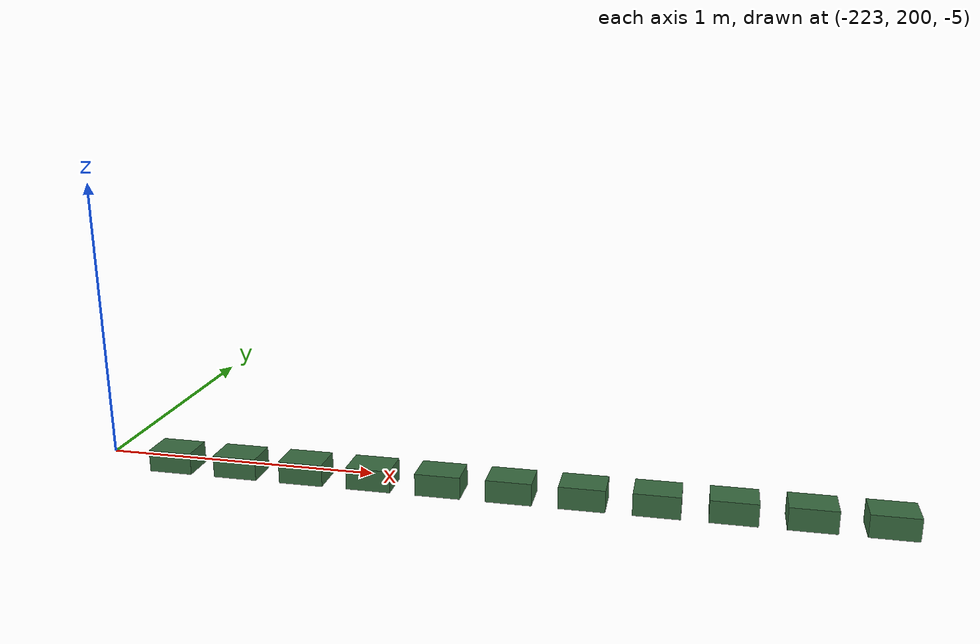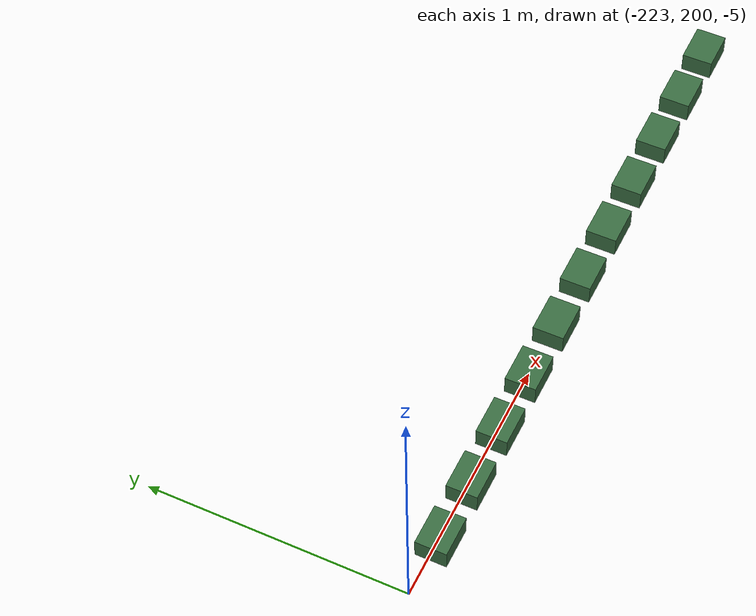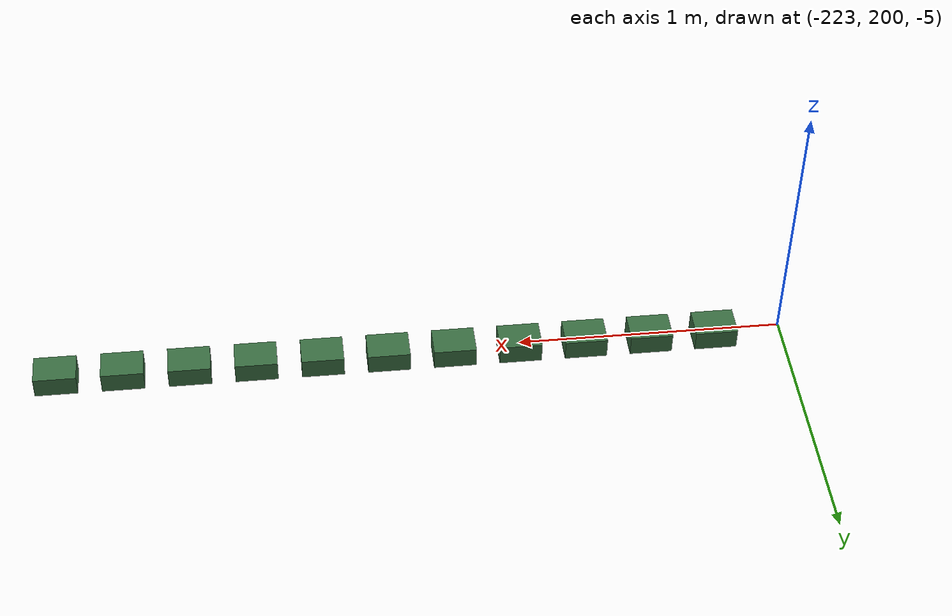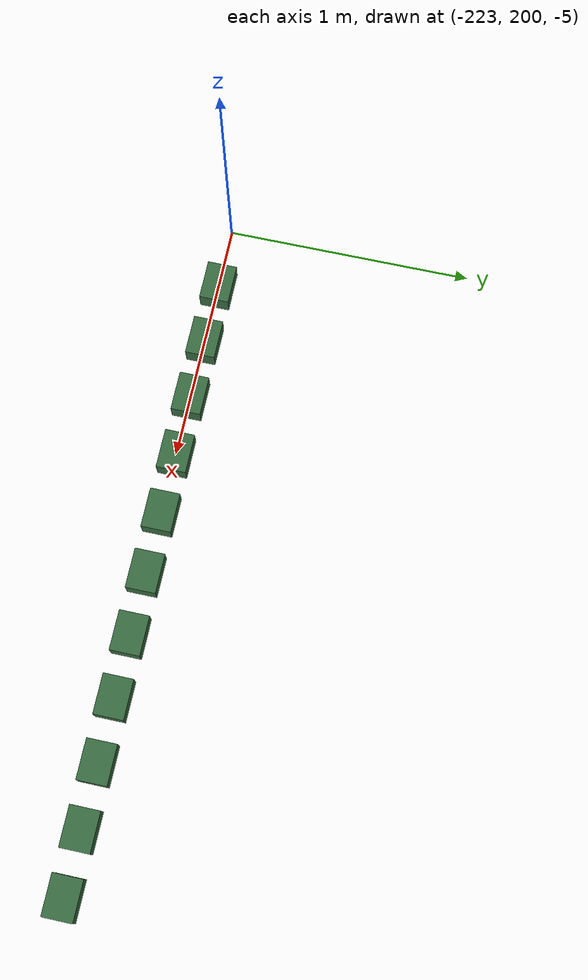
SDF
<sdf version="1.9">
 <world name="world_d_mixed_curb_vegetation">
  <model name="ground">
   <static>true</static>
   <link name="ground">
    <collision name="collision">
     <geometry><plane><normal>0 0 1</normal><size>80 80</size></plane></geometry>
    </collision>
    <visual name="visual">
     <geometry><plane><normal>0 0 1</normal><size>80 80</size></plane></geometry>
     <material>
      <ambient>0.31 0.35 0.27 1</ambient>
      <diffuse>0.31 0.35 0.27 1</diffuse>
      <specular>0.10 0.10 0.10 1</specular>
      <pbr><metal><roughness>0.76</roughness><metalness>0</metalness></metal></pbr>
     </material>
    </visual>
   </link>
  </model>
  <model name="negative_can_like_bollard">
   <static>true</static>
   <pose>-220.25 200 -5 0 0 0</pose>
   <link name="body">
    <visual name="visual">
     <geometry><box><size>0.16 0.12 0.08</size></box></geometry>
     <material>
      <ambient>0.22 0.42 0.25 1</ambient>
      <diffuse>0.22 0.42 0.25 1</diffuse>
      <specular>0.10 0.10 0.10 1</specular>
      <pbr><metal><roughness>0.68</roughness><metalness>0</metalness></metal></pbr>
     </material>
    </visual>
    <collision name="collision"><geometry><box><size>0.16 0.12 0.08</size></box></geometry></collision>
   </link>
   <plugin filename="gz-sim-label-system" name="gz::sim::systems::Label"><label>0</label></plugin>
  </model>
  <model name="negative_red_obstacle">
   <static>true</static>
   <pose>-220.5 200 -5 0 0 0</pose>
   <link name="body">
    <visual name="visual">
     <geometry><box><size>0.16 0.12 0.08</size></box></geometry>
     <material>
      <ambient>0.22 0.42 0.25 1</ambient>
      <diffuse>0.22 0.42 0.25 1</diffuse>
      <specular>0.10 0.10 0.10 1</specular>
      <pbr><metal><roughness>0.68</roughness><metalness>0</metalness></metal></pbr>
     </material>
    </visual>
    <collision name="collision"><geometry><box><size>0.16 0.12 0.08</size></box></geometry></collision>
   </link>
   <plugin filename="gz-sim-label-system" name="gz::sim::systems::Label"><label>0</label></plugin>
  </model>
  <model name="negative_green_obstacle">
   <static>true</static>
   <pose>-220.75 200 -5 0 0 0</pose>
   <link name="body">
    <visual name="visual">
     <geometry><box><size>0.16 0.12 0.08</size></box></geometry>
     <material>
      <ambient>0.22 0.42 0.25 1</ambient>
      <diffuse>0.22 0.42 0.25 1</diffuse>
      <specular>0.10 0.10 0.10 1</specular>
      <pbr><metal><roughness>0.68</roughness><metalness>0</metalness></metal></pbr>
     </material>
    </visual>
    <collision name="collision"><geometry><box><size>0.16 0.12 0.08</size></box></geometry></collision>
   </link>
   <plugin filename="gz-sim-label-system" name="gz::sim::systems::Label"><label>0</label></plugin>
  </model>
  <model name="negative_blue_obstacle">
   <static>true</static>
   <pose>-221.0 200 -5 0 0 0</pose>
   <link name="body">
    <visual name="visual">
     <geometry><box><size>0.16 0.12 0.08</size></box></geometry>
     <material>
      <ambient>0.22 0.42 0.25 1</ambient>
      <diffuse>0.22 0.42 0.25 1</diffuse>
      <specular>0.10 0.10 0.10 1</specular>
      <pbr><metal><roughness>0.68</roughness><metalness>0</metalness></metal></pbr>
     </material>
    </visual>
    <collision name="collision"><geometry><box><size>0.16 0.12 0.08</size></box></geometry></collision>
   </link>
   <plugin filename="gz-sim-label-system" name="gz::sim::systems::Label"><label>0</label></plugin>
  </model>
  <model name="negative_cardboard">
   <static>true</static>
   <pose>-221.25 200 -5 0 0 0</pose>
   <link name="body">
    <visual name="visual">
     <geometry><box><size>0.16 0.12 0.08</size></box></geometry>
     <material>
      <ambient>0.22 0.42 0.25 1</ambient>
      <diffuse>0.22 0.42 0.25 1</diffuse>
      <specular>0.10 0.10 0.10 1</specular>
      <pbr><metal><roughness>0.68</roughness><metalness>0</metalness></metal></pbr>
     </material>
    </visual>
    <collision name="collision"><geometry><box><size>0.16 0.12 0.08</size></box></geometry></collision>
   </link>
   <plugin filename="gz-sim-label-system" name="gz::sim::systems::Label"><label>0</label></plugin>
  </model>
  <model name="negative_fixed_bin">
   <static>true</static>
   <pose>-221.5 200 -5 0 0 0</pose>
   <link name="body">
    <visual name="visual">
     <geometry><box><size>0.16 0.12 0.08</size></box></geometry>
     <material>
      <ambient>0.22 0.42 0.25 1</ambient>
      <diffuse>0.22 0.42 0.25 1</diffuse>
      <specular>0.10 0.10 0.10 1</specular>
      <pbr><metal><roughness>0.68</roughness><metalness>0</metalness></metal></pbr>
     </material>
    </visual>
    <collision name="collision"><geometry><box><size>0.16 0.12 0.08</size></box></geometry></collision>
   </link>
   <plugin filename="gz-sim-label-system" name="gz::sim::systems::Label"><label>0</label></plugin>
  </model>
  <model name="negative_reflective_patch">
   <static>true</static>
   <pose>-221.75 200 -5 0 0 0</pose>
   <link name="body">
    <visual name="visual">
     <geometry><box><size>0.16 0.12 0.08</size></box></geometry>
     <material>
      <ambient>0.22 0.42 0.25 1</ambient>
      <diffuse>0.22 0.42 0.25 1</diffuse>
      <specular>0.10 0.10 0.10 1</specular>
      <pbr><metal><roughness>0.68</roughness><metalness>0</metalness></metal></pbr>
     </material>
    </visual>
    <collision name="collision"><geometry><box><size>0.16 0.12 0.08</size></box></geometry></collision>
   </link>
   <plugin filename="gz-sim-label-system" name="gz::sim::systems::Label"><label>0</label></plugin>
  </model>
  <model name="negative_shadow">
   <static>true</static>
   <pose>-222.0 200 -5 0 0 0</pose>
   <link name="body">
    <visual name="visual">
     <geometry><box><size>0.16 0.12 0.08</size></box></geometry>
     <material>
      <ambient>0.22 0.42 0.25 1</ambient>
      <diffuse>0.22 0.42 0.25 1</diffuse>
      <specular>0.10 0.10 0.10 1</specular>
      <pbr><metal><roughness>0.68</roughness><metalness>0</metalness></metal></pbr>
     </material>
    </visual>
    <collision name="collision"><geometry><box><size>0.16 0.12 0.08</size></box></geometry></collision>
   </link>
   <plugin filename="gz-sim-label-system" name="gz::sim::systems::Label"><label>0</label></plugin>
  </model>
  <model name="negative_wet_asphalt">
   <static>true</static>
   <pose>-222.25 200 -5 0 0 0</pose>
   <link name="body">
    <visual name="visual">
     <geometry><box><size>0.16 0.12 0.08</size></box></geometry>
     <material>
      <ambient>0.22 0.42 0.25 1</ambient>
      <diffuse>0.22 0.42 0.25 1</diffuse>
      <specular>0.10 0.10 0.10 1</specular>
      <pbr><metal><roughness>0.68</roughness><metalness>0</metalness></metal></pbr>
     </material>
    </visual>
    <collision name="collision"><geometry><box><size>0.16 0.12 0.08</size></box></geometry></collision>
   </link>
   <plugin filename="gz-sim-label-system" name="gz::sim::systems::Label"><label>0</label></plugin>
  </model>
  <model name="negative_leaves_outside_target_region">
   <static>true</static>
   <pose>-222.5 200 -5 0 0 0</pose>
   <link name="body">
    <visual name="visual">
     <geometry><box><size>0.16 0.12 0.08</size></box></geometry>
     <material>
      <ambient>0.22 0.42 0.25 1</ambient>
      <diffuse>0.22 0.42 0.25 1</diffuse>
      <specular>0.10 0.10 0.10 1</specular>
      <pbr><metal><roughness>0.68</roughness><metalness>0</metalness></metal></pbr>
     </material>
    </visual>
    <collision name="collision"><geometry><box><size>0.16 0.12 0.08</size></box></geometry></collision>
   </link>
   <plugin filename="gz-sim-label-system" name="gz::sim::systems::Label"><label>0</label></plugin>
  </model>
  <model name="negative_robot_self_pixels">
   <static>true</static>
   <pose>-222.75 200 -5 0 0 0</pose>
   <link name="body">
    <visual name="visual">
     <geometry><box><size>0.16 0.12 0.08</size></box></geometry>
     <material>
      <ambient>0.22 0.42 0.25 1</ambient>
      <diffuse>0.22 0.42 0.25 1</diffuse>
      <specular>0.10 0.10 0.10 1</specular>
      <pbr><metal><roughness>0.68</roughness><metalness>0</metalness></metal></pbr>
     </material>
    </visual>
    <collision name="collision"><geometry><box><size>0.16 0.12 0.08</size></box></geometry></collision>
   </link>
   <plugin filename="gz-sim-label-system" name="gz::sim::systems::Label"><label>0</label></plugin>
  </model>
 </world>
</sdf>
